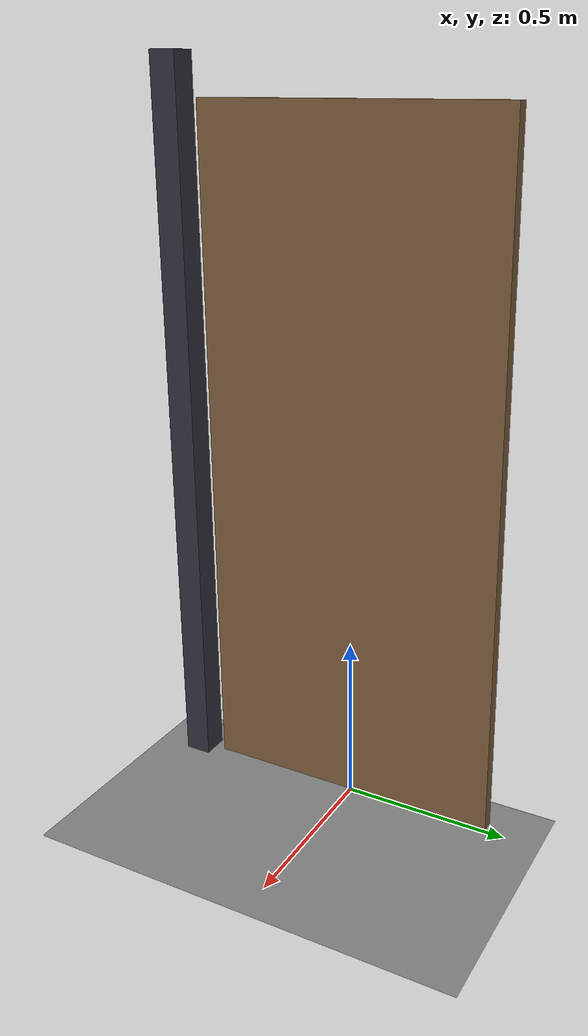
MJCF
<mujoco model="self_closing_door">
  <compiler angle="radian"/>
  <option timestep="0.002"/>
  <worldbody>
    <geom name="floor" type="plane" size="4 4 0.1" friction="0.8 0.005 0.002"/>
    <body name="hinge jamb">
      <geom name="hinge jamb" type="box" pos="0 -0.54 1.07" size="0.04 0.04 1.07" rgba="0.25 0.25 0.3 1"/>
    </body>
    <body name="door" pos="0 -0.45 1.02">
      <joint name="hinge" type="hinge" pos="0 0 0" axis="0 0 1" limited="true" range="0 1.74533" stiffness="45" springref="0" damping="16"/>
      <geom name="door" type="box" pos="0 0.45 0" size="0.02 0.45 1" mass="12" solref="0.01 1" rgba="0.6 0.45 0.3 1"/>
    </body>
  </worldbody>
  <keyframe>
    <key name="start" qpos="1.309" qvel="0"/>
  </keyframe>
</mujoco>
